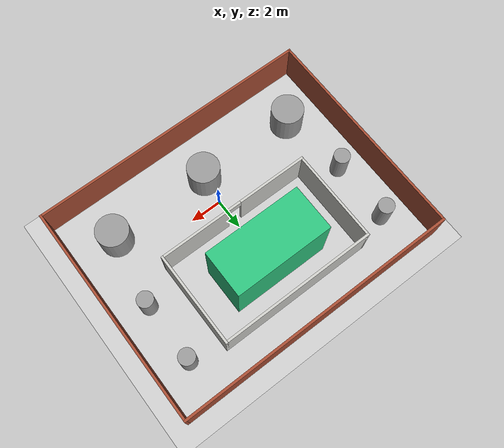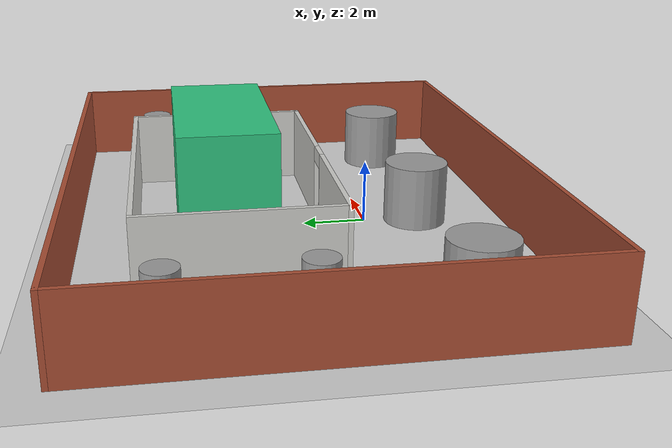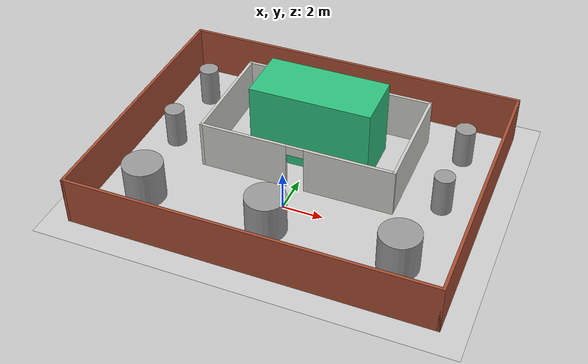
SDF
<sdf version="1.7">
 <world name="default">
  <light name="sun" type="directional">
   <pose>0 0 10 0 -0 0</pose>
   <diffuse>0.8 0.8 0.8 1</diffuse>
   <specular>0.2 0.2 0.2 1</specular>
   <attenuation>
    <range>1000</range>
    <constant>0.9</constant>
    <linear>0.01</linear>
    <quadratic>0.001</quadratic>
   </attenuation>
   <direction>-0.5 0.1 -0.9</direction>
   <spot><inner_angle>0</inner_angle><outer_angle>0</outer_angle><falloff>0</falloff></spot>
  </light>
  <model name="ground_plane">
   <static>1</static>
   <link name="link">
    <collision name="collision">
     <geometry><plane><normal>0 0 1</normal><size>100 100</size></plane></geometry>
     <surface>
      <contact><collide_bitmask>65535</collide_bitmask></contact>
      <friction><ode><mu>100</mu><mu2>50</mu2></ode></friction>
     </surface>
    </collision>
    <visual name="visual">
     <cast_shadows>0</cast_shadows>
     <geometry><plane><normal>0 0 1</normal><size>100 100</size></plane></geometry>
     <material>
      <script><uri>file://media/materials/scripts/gazebo.material</uri><name>Gazebo/Grey</name></script>
     </material>
    </visual>
   </link>
  </model>
  <gravity>0 0 -9.8</gravity>
  <magnetic_field>6e-06 2.3e-05 -4.2e-05</magnetic_field>
  <atmosphere type="adiabatic"/>
  <physics type="ode">
   <max_step_size>0.001</max_step_size>
   <real_time_factor>1</real_time_factor>
   <real_time_update_rate>1000</real_time_update_rate>
  </physics>
  <scene><ambient>0.4 0.4 0.4 1</ambient><background>0.7 0.7 0.7 1</background><shadows>1</shadows></scene>
  <audio><device>default</device></audio>
  <spherical_coordinates>
   <surface_model>EARTH_WGS84</surface_model>
   <latitude_deg>0</latitude_deg>
   <longitude_deg>0</longitude_deg>
   <elevation>0</elevation>
   <heading_deg>0</heading_deg>
  </spherical_coordinates>
  <model name="building">
   <link name="link_0">
    <inertial>
     <mass>119.736</mass>
     <inertia><ixx>518.581</ixx><ixy>0</ixy><ixz>0</ixz><iyy>817.421</iyy><iyz>0</iyz><izz>469.951</izz></inertia>
    </inertial>
    <pose>0 0 2 0 -0 0</pose>
    <visual name="visual">
     <geometry><box><size>6.20681 2.92821 4</size></box></geometry>
     <material>
      <lighting>1</lighting>
      <script><uri>file://media/materials/scripts/gazebo.material</uri><name>Gazebo/Grey</name></script>
      <shader type="pixel"><normal_map>__default__</normal_map></shader>
      <ambient>0.18 0.761 0.494 1</ambient>
      <diffuse>0.7 0.7 0.7 1</diffuse>
      <specular>0.01 0.01 0.01 1</specular>
      <emissive>0 0 0 1</emissive>
     </material>
    </visual>
    <collision name="collision">
     <geometry><box><size>6.20681 2.92821 4</size></box></geometry>
     <surface>
      <friction>
       <ode><mu>1</mu><mu2>1</mu2><fdir1>0 0 0</fdir1><slip1>0</slip1><slip2>0</slip2></ode>
       <torsional>
        <coefficient>1</coefficient>
        <patch_radius>0</patch_radius>
        <surface_radius>0</surface_radius>
        <use_patch_radius>1</use_patch_radius>
        <ode><slip>0</slip></ode>
       </torsional>
      </friction>
      <bounce><restitution_coefficient>0</restitution_coefficient><threshold>1e+06</threshold></bounce>
      <contact>
       <collide_without_contact>0</collide_without_contact>
       <collide_without_contact_bitmask>1</collide_without_contact_bitmask>
       <collide_bitmask>1</collide_bitmask>
       <ode>
        <soft_cfm>0</soft_cfm>
        <soft_erp>0.2</soft_erp>
        <kp>1e+13</kp>
        <kd>1</kd>
        <max_vel>0.01</max_vel>
        <min_depth>0</min_depth>
       </ode>
       <bullet>
        <split_impulse>1</split_impulse>
        <split_impulse_penetration_threshold>-0.01</split_impulse_penetration_threshold>
        <soft_cfm>0</soft_cfm>
        <soft_erp>0.2</soft_erp>
        <kp>1e+13</kp>
        <kd>1</kd>
       </bullet>
      </contact>
     </surface>
    </collision>
   </link>
   <static>0</static>
   <pose>0.019029 4.61016 -0 0 -0 0</pose>
  </model>
  <model name="pole2">
   <link name="link_3_clone">
    <inertial>
     <mass>3141.59</mass>
     <inertia><ixx>1243.55</ixx><ixy>0</ixy><ixz>0</ixz><iyy>1243.55</iyy><iyz>0</iyz><izz>392.699</izz></inertia>
    </inertial>
    <pose>-6.4412 -0.077375 1 0 -0 0</pose>
    <visual name="visual">
     <geometry><cylinder><radius>1</radius><length>2</length></cylinder></geometry>
     <material>
      <lighting>1</lighting>
      <script><uri>file://media/materials/scripts/gazebo.material</uri><name>Gazebo/Grey</name></script>
      <shader type="pixel"><normal_map>__default__</normal_map></shader>
      <ambient>0.604 0.6 0.588 1</ambient>
      <diffuse>0.7 0.7 0.7 1</diffuse>
      <specular>0.01 0.01 0.01 1</specular>
      <emissive>0 0 0 1</emissive>
     </material>
    </visual>
    <collision name="collision">
     <geometry><cylinder><radius>1</radius><length>2</length></cylinder></geometry>
     <surface>
      <friction>
       <ode><mu>1</mu><mu2>1</mu2><fdir1>0 0 0</fdir1><slip1>0</slip1><slip2>0</slip2></ode>
       <torsional>
        <coefficient>1</coefficient>
        <patch_radius>0</patch_radius>
        <surface_radius>0</surface_radius>
        <use_patch_radius>1</use_patch_radius>
        <ode><slip>0</slip></ode>
       </torsional>
      </friction>
      <bounce><restitution_coefficient>0</restitution_coefficient><threshold>1e+06</threshold></bounce>
      <contact>
       <collide_without_contact>0</collide_without_contact>
       <collide_without_contact_bitmask>1</collide_without_contact_bitmask>
       <collide_bitmask>1</collide_bitmask>
       <ode>
        <soft_cfm>0</soft_cfm>
        <soft_erp>0.2</soft_erp>
        <kp>1e+13</kp>
        <kd>1</kd>
        <max_vel>0.01</max_vel>
        <min_depth>0</min_depth>
       </ode>
       <bullet>
        <split_impulse>1</split_impulse>
        <split_impulse_penetration_threshold>-0.01</split_impulse_penetration_threshold>
        <soft_cfm>0</soft_cfm>
        <soft_erp>0.2</soft_erp>
        <kp>1e+13</kp>
        <kd>1</kd>
       </bullet>
      </contact>
     </surface>
    </collision>
   </link>
   <link name="link_3_clone_clone">
    <inertial>
     <mass>3141.59</mass>
     <inertia><ixx>1243.55</ixx><ixy>0</ixy><ixz>0</ixz><iyy>1243.55</iyy><iyz>0</iyz><izz>392.699</izz></inertia>
    </inertial>
    <pose>6.27808 -0.077375 1 0 -0 0</pose>
    <visual name="visual">
     <geometry><cylinder><radius>1</radius><length>2</length></cylinder></geometry>
     <material>
      <lighting>1</lighting>
      <script><uri>file://media/materials/scripts/gazebo.material</uri><name>Gazebo/Grey</name></script>
      <shader type="pixel"><normal_map>__default__</normal_map></shader>
      <ambient>0.604 0.6 0.588 1</ambient>
      <diffuse>0.7 0.7 0.7 1</diffuse>
      <specular>0.01 0.01 0.01 1</specular>
      <emissive>0 0 0 1</emissive>
     </material>
    </visual>
    <collision name="collision">
     <geometry><cylinder><radius>1</radius><length>2</length></cylinder></geometry>
     <surface>
      <friction>
       <ode><mu>1</mu><mu2>1</mu2><fdir1>0 0 0</fdir1><slip1>0</slip1><slip2>0</slip2></ode>
       <torsional>
        <coefficient>1</coefficient>
        <patch_radius>0</patch_radius>
        <surface_radius>0</surface_radius>
        <use_patch_radius>1</use_patch_radius>
        <ode><slip>0</slip></ode>
       </torsional>
      </friction>
      <bounce><restitution_coefficient>0</restitution_coefficient><threshold>1e+06</threshold></bounce>
      <contact>
       <collide_without_contact>0</collide_without_contact>
       <collide_without_contact_bitmask>1</collide_without_contact_bitmask>
       <collide_bitmask>1</collide_bitmask>
       <ode>
        <soft_cfm>0</soft_cfm>
        <soft_erp>0.2</soft_erp>
        <kp>1e+13</kp>
        <kd>1</kd>
        <max_vel>0.01</max_vel>
        <min_depth>0</min_depth>
       </ode>
       <bullet>
        <split_impulse>1</split_impulse>
        <split_impulse_penetration_threshold>-0.01</split_impulse_penetration_threshold>
        <soft_cfm>0</soft_cfm>
        <soft_erp>0.2</soft_erp>
        <kp>1e+13</kp>
        <kd>1</kd>
       </bullet>
      </contact>
     </surface>
    </collision>
   </link>
   <link name="link_3_clone_clone_0">
    <inertial>
     <mass>3141.59</mass>
     <inertia><ixx>1243.55</ixx><ixy>0</ixy><ixz>0</ixz><iyy>1243.55</iyy><iyz>0</iyz><izz>392.699</izz></inertia>
    </inertial>
    <pose>-0.117986 -0.077375 1 0 -0 0</pose>
    <visual name="visual">
     <geometry><cylinder><radius>1</radius><length>2</length></cylinder></geometry>
     <material>
      <lighting>1</lighting>
      <script><uri>file://media/materials/scripts/gazebo.material</uri><name>Gazebo/Grey</name></script>
      <shader type="pixel"><normal_map>__default__</normal_map></shader>
      <ambient>0.604 0.6 0.588 1</ambient>
      <diffuse>0.7 0.7 0.7 1</diffuse>
      <specular>0.01 0.01 0.01 1</specular>
      <emissive>0 0 0 1</emissive>
     </material>
    </visual>
    <collision name="collision">
     <geometry><cylinder><radius>1</radius><length>2</length></cylinder></geometry>
     <surface>
      <friction>
       <ode><mu>1</mu><mu2>1</mu2><fdir1>0 0 0</fdir1><slip1>0</slip1><slip2>0</slip2></ode>
       <torsional>
        <coefficient>1</coefficient>
        <patch_radius>0</patch_radius>
        <surface_radius>0</surface_radius>
        <use_patch_radius>1</use_patch_radius>
        <ode><slip>0</slip></ode>
       </torsional>
      </friction>
      <bounce><restitution_coefficient>0</restitution_coefficient><threshold>1e+06</threshold></bounce>
      <contact>
       <collide_without_contact>0</collide_without_contact>
       <collide_without_contact_bitmask>1</collide_without_contact_bitmask>
       <collide_bitmask>1</collide_bitmask>
       <ode>
        <soft_cfm>0</soft_cfm>
        <soft_erp>0.2</soft_erp>
        <kp>1e+13</kp>
        <kd>1</kd>
        <max_vel>0.01</max_vel>
        <min_depth>0</min_depth>
       </ode>
       <bullet>
        <split_impulse>1</split_impulse>
        <split_impulse_penetration_threshold>-0.01</split_impulse_penetration_threshold>
        <soft_cfm>0</soft_cfm>
        <soft_erp>0.2</soft_erp>
        <kp>1e+13</kp>
        <kd>1</kd>
       </bullet>
      </contact>
     </surface>
    </collision>
   </link>
   <link name="link_3_clone_clone_clone">
    <inertial>
     <mass>3141.59</mass>
     <inertia><ixx>1243.55</ixx><ixy>0</ixy><ixz>0</ixz><iyy>1243.55</iyy><iyz>0</iyz><izz>392.699</izz></inertia>
    </inertial>
    <pose>7.03983 8.21235 1 0 -0 0</pose>
    <visual name="visual">
     <geometry><cylinder><radius>0.5</radius><length>2</length></cylinder></geometry>
     <material>
      <lighting>1</lighting>
      <script><uri>file://media/materials/scripts/gazebo.material</uri><name>Gazebo/Grey</name></script>
      <shader type="pixel"><normal_map>__default__</normal_map></shader>
      <ambient>0.604 0.6 0.588 1</ambient>
      <diffuse>0.7 0.7 0.7 1</diffuse>
      <specular>0.01 0.01 0.01 1</specular>
      <emissive>0 0 0 1</emissive>
     </material>
    </visual>
    <collision name="collision">
     <geometry><cylinder><radius>0.5</radius><length>2</length></cylinder></geometry>
     <surface>
      <friction>
       <ode><mu>1</mu><mu2>1</mu2><fdir1>0 0 0</fdir1><slip1>0</slip1><slip2>0</slip2></ode>
       <torsional>
        <coefficient>1</coefficient>
        <patch_radius>0</patch_radius>
        <surface_radius>0</surface_radius>
        <use_patch_radius>1</use_patch_radius>
        <ode><slip>0</slip></ode>
       </torsional>
      </friction>
      <bounce><restitution_coefficient>0</restitution_coefficient><threshold>1e+06</threshold></bounce>
      <contact>
       <collide_without_contact>0</collide_without_contact>
       <collide_without_contact_bitmask>1</collide_without_contact_bitmask>
       <collide_bitmask>1</collide_bitmask>
       <ode>
        <soft_cfm>0</soft_cfm>
        <soft_erp>0.2</soft_erp>
        <kp>1e+13</kp>
        <kd>1</kd>
        <max_vel>0.01</max_vel>
        <min_depth>0</min_depth>
       </ode>
       <bullet>
        <split_impulse>1</split_impulse>
        <split_impulse_penetration_threshold>-0.01</split_impulse_penetration_threshold>
        <soft_cfm>0</soft_cfm>
        <soft_erp>0.2</soft_erp>
        <kp>1e+13</kp>
        <kd>1</kd>
       </bullet>
      </contact>
     </surface>
    </collision>
   </link>
   <link name="link_3_clone_clone_clone_clone">
    <inertial>
     <mass>3141.59</mass>
     <inertia><ixx>1243.55</ixx><ixy>0</ixy><ixz>0</ixz><iyy>1243.55</iyy><iyz>0</iyz><izz>392.699</izz></inertia>
    </inertial>
    <pose>-7.0558 8.21235 1 0 -0 0</pose>
    <visual name="visual">
     <geometry><cylinder><radius>0.5</radius><length>2</length></cylinder></geometry>
     <material>
      <lighting>1</lighting>
      <script><uri>file://media/materials/scripts/gazebo.material</uri><name>Gazebo/Grey</name></script>
      <shader type="pixel"><normal_map>__default__</normal_map></shader>
      <ambient>0.604 0.6 0.588 1</ambient>
      <diffuse>0.7 0.7 0.7 1</diffuse>
      <specular>0.01 0.01 0.01 1</specular>
      <emissive>0 0 0 1</emissive>
     </material>
    </visual>
    <collision name="collision">
     <geometry><cylinder><radius>0.5</radius><length>2</length></cylinder></geometry>
     <surface>
      <friction>
       <ode><mu>1</mu><mu2>1</mu2><fdir1>0 0 0</fdir1><slip1>0</slip1><slip2>0</slip2></ode>
       <torsional>
        <coefficient>1</coefficient>
        <patch_radius>0</patch_radius>
        <surface_radius>0</surface_radius>
        <use_patch_radius>1</use_patch_radius>
        <ode><slip>0</slip></ode>
       </torsional>
      </friction>
      <bounce><restitution_coefficient>0</restitution_coefficient><threshold>1e+06</threshold></bounce>
      <contact>
       <collide_without_contact>0</collide_without_contact>
       <collide_without_contact_bitmask>1</collide_without_contact_bitmask>
       <collide_bitmask>1</collide_bitmask>
       <ode>
        <soft_cfm>0</soft_cfm>
        <soft_erp>0.2</soft_erp>
        <kp>1e+13</kp>
        <kd>1</kd>
        <max_vel>0.01</max_vel>
        <min_depth>0</min_depth>
       </ode>
       <bullet>
        <split_impulse>1</split_impulse>
        <split_impulse_penetration_threshold>-0.01</split_impulse_penetration_threshold>
        <soft_cfm>0</soft_cfm>
        <soft_erp>0.2</soft_erp>
        <kp>1e+13</kp>
        <kd>1</kd>
       </bullet>
      </contact>
     </surface>
    </collision>
   </link>
   <link name="link_3_clone_clone_clone_clone_0">
    <inertial>
     <mass>3141.59</mass>
     <inertia><ixx>1243.55</ixx><ixy>0</ixy><ixz>0</ixz><iyy>1243.55</iyy><iyz>0</iyz><izz>392.699</izz></inertia>
    </inertial>
    <pose>-7.0558 4.27801 1 0 -0 0</pose>
    <visual name="visual">
     <geometry><cylinder><radius>0.5</radius><length>2</length></cylinder></geometry>
     <material>
      <lighting>1</lighting>
      <script><uri>file://media/materials/scripts/gazebo.material</uri><name>Gazebo/Grey</name></script>
      <shader type="pixel"><normal_map>__default__</normal_map></shader>
      <ambient>0.604 0.6 0.588 1</ambient>
      <diffuse>0.7 0.7 0.7 1</diffuse>
      <specular>0.01 0.01 0.01 1</specular>
      <emissive>0 0 0 1</emissive>
     </material>
    </visual>
    <collision name="collision">
     <geometry><cylinder><radius>0.5</radius><length>2</length></cylinder></geometry>
     <surface>
      <friction>
       <ode><mu>1</mu><mu2>1</mu2><fdir1>0 0 0</fdir1><slip1>0</slip1><slip2>0</slip2></ode>
       <torsional>
        <coefficient>1</coefficient>
        <patch_radius>0</patch_radius>
        <surface_radius>0</surface_radius>
        <use_patch_radius>1</use_patch_radius>
        <ode><slip>0</slip></ode>
       </torsional>
      </friction>
      <bounce><restitution_coefficient>0</restitution_coefficient><threshold>1e+06</threshold></bounce>
      <contact>
       <collide_without_contact>0</collide_without_contact>
       <collide_without_contact_bitmask>1</collide_without_contact_bitmask>
       <collide_bitmask>1</collide_bitmask>
       <ode>
        <soft_cfm>0</soft_cfm>
        <soft_erp>0.2</soft_erp>
        <kp>1e+13</kp>
        <kd>1</kd>
        <max_vel>0.01</max_vel>
        <min_depth>0</min_depth>
       </ode>
       <bullet>
        <split_impulse>1</split_impulse>
        <split_impulse_penetration_threshold>-0.01</split_impulse_penetration_threshold>
        <soft_cfm>0</soft_cfm>
        <soft_erp>0.2</soft_erp>
        <kp>1e+13</kp>
        <kd>1</kd>
       </bullet>
      </contact>
     </surface>
    </collision>
   </link>
   <link name="link_3_clone_clone_clone_clone_0_clone">
    <inertial>
     <mass>3141.59</mass>
     <inertia><ixx>1243.55</ixx><ixy>0</ixy><ixz>0</ixz><iyy>1243.55</iyy><iyz>0</iyz><izz>392.699</izz></inertia>
    </inertial>
    <pose>7.03983 4.32667 1 0 -0 0</pose>
    <visual name="visual">
     <geometry><cylinder><radius>0.5</radius><length>2</length></cylinder></geometry>
     <material>
      <lighting>1</lighting>
      <script><uri>file://media/materials/scripts/gazebo.material</uri><name>Gazebo/Grey</name></script>
      <shader type="pixel"><normal_map>__default__</normal_map></shader>
      <ambient>0.604 0.6 0.588 1</ambient>
      <diffuse>0.7 0.7 0.7 1</diffuse>
      <specular>0.01 0.01 0.01 1</specular>
      <emissive>0 0 0 1</emissive>
     </material>
    </visual>
    <collision name="collision">
     <geometry><cylinder><radius>0.5</radius><length>2</length></cylinder></geometry>
     <surface>
      <friction>
       <ode><mu>1</mu><mu2>1</mu2><fdir1>0 0 0</fdir1><slip1>0</slip1><slip2>0</slip2></ode>
       <torsional>
        <coefficient>1</coefficient>
        <patch_radius>0</patch_radius>
        <surface_radius>0</surface_radius>
        <use_patch_radius>1</use_patch_radius>
        <ode><slip>0</slip></ode>
       </torsional>
      </friction>
      <bounce><restitution_coefficient>0</restitution_coefficient><threshold>1e+06</threshold></bounce>
      <contact>
       <collide_without_contact>0</collide_without_contact>
       <collide_without_contact_bitmask>1</collide_without_contact_bitmask>
       <collide_bitmask>1</collide_bitmask>
       <ode>
        <soft_cfm>0</soft_cfm>
        <soft_erp>0.2</soft_erp>
        <kp>1e+13</kp>
        <kd>1</kd>
        <max_vel>0.01</max_vel>
        <min_depth>0</min_depth>
       </ode>
       <bullet>
        <split_impulse>1</split_impulse>
        <split_impulse_penetration_threshold>-0.01</split_impulse_penetration_threshold>
        <soft_cfm>0</soft_cfm>
        <soft_erp>0.2</soft_erp>
        <kp>1e+13</kp>
        <kd>1</kd>
       </bullet>
      </contact>
     </surface>
    </collision>
   </link>
   <static>0</static>
   <pose>-0.031832 -1.58928 -1.4e-05 -2e-06 -2e-06 0</pose>
  </model>
  <model name="testworld2">
   <link name="Wall_16">
    <pose>0 -6.925 0 0 -0 0</pose>
    <inertial>
     <mass>13500</mass>
     <inertia><ixx>7056.56</ixx><ixy>0</ixy><ixz>0</ixz><iyy>371531</iyy><iyz>0</iyz><izz>364525</izz></inertia>
    </inertial>
    <visual name="Wall_16_Visual">
     <pose>0 0 1.25 0 -0 0</pose>
     <geometry><box><size>18 0.15 2.5</size></box></geometry>
     <material>
      <script><uri>file://media/materials/scripts/gazebo.material</uri><name>Gazebo/Bricks</name></script>
      <ambient>1 1 1 1</ambient>
      <shader type="pixel"><normal_map>__default__</normal_map></shader>
     </material>
     <meta><layer>0</layer></meta>
    </visual>
    <collision name="Wall_16_Collision">
     <pose>0 0 1.25 0 -0 0</pose>
     <geometry><box><size>18 0.15 2.5</size></box></geometry>
     <surface>
      <friction>
       <ode><mu>1</mu><mu2>1</mu2><fdir1>0 0 0</fdir1><slip1>0</slip1><slip2>0</slip2></ode>
       <torsional>
        <coefficient>1</coefficient>
        <patch_radius>0</patch_radius>
        <surface_radius>0</surface_radius>
        <use_patch_radius>1</use_patch_radius>
        <ode><slip>0</slip></ode>
       </torsional>
      </friction>
      <bounce><restitution_coefficient>0</restitution_coefficient><threshold>1e+06</threshold></bounce>
      <contact>
       <collide_without_contact>0</collide_without_contact>
       <collide_without_contact_bitmask>1</collide_without_contact_bitmask>
       <collide_bitmask>1</collide_bitmask>
       <ode>
        <soft_cfm>0</soft_cfm>
        <soft_erp>0.2</soft_erp>
        <kp>1e+13</kp>
        <kd>1</kd>
        <max_vel>0.01</max_vel>
        <min_depth>0</min_depth>
       </ode>
       <bullet>
        <split_impulse>1</split_impulse>
        <split_impulse_penetration_threshold>-0.01</split_impulse_penetration_threshold>
        <soft_cfm>0</soft_cfm>
        <soft_erp>0.2</soft_erp>
        <kp>1e+13</kp>
        <kd>1</kd>
       </bullet>
      </contact>
     </surface>
    </collision>
   </link>
   <link name="Wall_17">
    <pose>8.925 0 0 0 -0 1.5708</pose>
    <inertial>
     <mass>10500</mass>
     <inertia><ixx>5488.44</ixx><ixy>0</ixy><ixz>0</ixz><iyy>176969</iyy><iyz>0</iyz><izz>171520</izz></inertia>
    </inertial>
    <visual name="Wall_17_Visual">
     <pose>0 0 1.25 0 -0 0</pose>
     <geometry><box><size>14 0.15 2.5</size></box></geometry>
     <material>
      <script><uri>file://media/materials/scripts/gazebo.material</uri><name>Gazebo/Bricks</name></script>
      <ambient>1 1 1 1</ambient>
      <shader type="pixel"><normal_map>__default__</normal_map></shader>
     </material>
     <meta><layer>0</layer></meta>
    </visual>
    <collision name="Wall_17_Collision">
     <pose>0 0 1.25 0 -0 0</pose>
     <geometry><box><size>14 0.15 2.5</size></box></geometry>
     <surface>
      <friction>
       <ode><mu>1</mu><mu2>1</mu2><fdir1>0 0 0</fdir1><slip1>0</slip1><slip2>0</slip2></ode>
       <torsional>
        <coefficient>1</coefficient>
        <patch_radius>0</patch_radius>
        <surface_radius>0</surface_radius>
        <use_patch_radius>1</use_patch_radius>
        <ode><slip>0</slip></ode>
       </torsional>
      </friction>
      <bounce><restitution_coefficient>0</restitution_coefficient><threshold>1e+06</threshold></bounce>
      <contact>
       <collide_without_contact>0</collide_without_contact>
       <collide_without_contact_bitmask>1</collide_without_contact_bitmask>
       <collide_bitmask>1</collide_bitmask>
       <ode>
        <soft_cfm>0</soft_cfm>
        <soft_erp>0.2</soft_erp>
        <kp>1e+13</kp>
        <kd>1</kd>
        <max_vel>0.01</max_vel>
        <min_depth>0</min_depth>
       </ode>
       <bullet>
        <split_impulse>1</split_impulse>
        <split_impulse_penetration_threshold>-0.01</split_impulse_penetration_threshold>
        <soft_cfm>0</soft_cfm>
        <soft_erp>0.2</soft_erp>
        <kp>1e+13</kp>
        <kd>1</kd>
       </bullet>
      </contact>
     </surface>
    </collision>
   </link>
   <link name="Wall_18">
    <pose>0 6.925 0 0 -0 3.14159</pose>
    <inertial>
     <mass>13500</mass>
     <inertia><ixx>7056.56</ixx><ixy>0</ixy><ixz>0</ixz><iyy>371531</iyy><iyz>0</iyz><izz>364525</izz></inertia>
    </inertial>
    <visual name="Wall_18_Visual">
     <pose>0 0 1.25 0 -0 0</pose>
     <geometry><box><size>18 0.15 2.5</size></box></geometry>
     <material>
      <script><uri>file://media/materials/scripts/gazebo.material</uri><name>Gazebo/Bricks</name></script>
      <ambient>1 1 1 1</ambient>
      <shader type="pixel"><normal_map>__default__</normal_map></shader>
     </material>
     <meta><layer>0</layer></meta>
    </visual>
    <collision name="Wall_18_Collision">
     <pose>0 0 1.25 0 -0 0</pose>
     <geometry><box><size>18 0.15 2.5</size></box></geometry>
     <surface>
      <friction>
       <ode><mu>1</mu><mu2>1</mu2><fdir1>0 0 0</fdir1><slip1>0</slip1><slip2>0</slip2></ode>
       <torsional>
        <coefficient>1</coefficient>
        <patch_radius>0</patch_radius>
        <surface_radius>0</surface_radius>
        <use_patch_radius>1</use_patch_radius>
        <ode><slip>0</slip></ode>
       </torsional>
      </friction>
      <bounce><restitution_coefficient>0</restitution_coefficient><threshold>1e+06</threshold></bounce>
      <contact>
       <collide_without_contact>0</collide_without_contact>
       <collide_without_contact_bitmask>1</collide_without_contact_bitmask>
       <collide_bitmask>1</collide_bitmask>
       <ode>
        <soft_cfm>0</soft_cfm>
        <soft_erp>0.2</soft_erp>
        <kp>1e+13</kp>
        <kd>1</kd>
        <max_vel>0.01</max_vel>
        <min_depth>0</min_depth>
       </ode>
       <bullet>
        <split_impulse>1</split_impulse>
        <split_impulse_penetration_threshold>-0.01</split_impulse_penetration_threshold>
        <soft_cfm>0</soft_cfm>
        <soft_erp>0.2</soft_erp>
        <kp>1e+13</kp>
        <kd>1</kd>
       </bullet>
      </contact>
     </surface>
    </collision>
   </link>
   <link name="Wall_19">
    <pose>-8.925 0 0 0 0 -1.5708</pose>
    <inertial>
     <mass>10500</mass>
     <inertia><ixx>5488.44</ixx><ixy>0</ixy><ixz>0</ixz><iyy>176969</iyy><iyz>0</iyz><izz>171520</izz></inertia>
    </inertial>
    <visual name="Wall_19_Visual">
     <pose>0 0 1.25 0 -0 0</pose>
     <geometry><box><size>14 0.15 2.5</size></box></geometry>
     <material>
      <script><uri>file://media/materials/scripts/gazebo.material</uri><name>Gazebo/Bricks</name></script>
      <ambient>1 1 1 1</ambient>
      <shader type="pixel"><normal_map>__default__</normal_map></shader>
     </material>
     <meta><layer>0</layer></meta>
    </visual>
    <collision name="Wall_19_Collision">
     <pose>0 0 1.25 0 -0 0</pose>
     <geometry><box><size>14 0.15 2.5</size></box></geometry>
     <surface>
      <friction>
       <ode><mu>1</mu><mu2>1</mu2><fdir1>0 0 0</fdir1><slip1>0</slip1><slip2>0</slip2></ode>
       <torsional>
        <coefficient>1</coefficient>
        <patch_radius>0</patch_radius>
        <surface_radius>0</surface_radius>
        <use_patch_radius>1</use_patch_radius>
        <ode><slip>0</slip></ode>
       </torsional>
      </friction>
      <bounce><restitution_coefficient>0</restitution_coefficient><threshold>1e+06</threshold></bounce>
      <contact>
       <collide_without_contact>0</collide_without_contact>
       <collide_without_contact_bitmask>1</collide_without_contact_bitmask>
       <collide_bitmask>1</collide_bitmask>
       <ode>
        <soft_cfm>0</soft_cfm>
        <soft_erp>0.2</soft_erp>
        <kp>1e+13</kp>
        <kd>1</kd>
        <max_vel>0.01</max_vel>
        <min_depth>0</min_depth>
       </ode>
       <bullet>
        <split_impulse>1</split_impulse>
        <split_impulse_penetration_threshold>-0.01</split_impulse_penetration_threshold>
        <soft_cfm>0</soft_cfm>
        <soft_erp>0.2</soft_erp>
        <kp>1e+13</kp>
        <kd>1</kd>
       </bullet>
      </contact>
     </surface>
    </collision>
   </link>
   <link name="Wall_26">
    <pose>-0.040552 5.03123 0 0 -0 0</pose>
    <inertial>
     <mass>7500</mass>
     <inertia><ixx>3920.31</ixx><ixy>0</ixy><ixz>0</ixz><iyy>66406.2</iyy><iyz>0</iyz><izz>62514.1</izz></inertia>
    </inertial>
    <visual name="Wall_26_Visual">
     <pose>0 0 1.25 0 -0 0</pose>
     <geometry><box><size>10 0.15 2.5</size></box></geometry>
     <material>
      <script><uri>file://media/materials/scripts/gazebo.material</uri><name>Gazebo/CeilingTiled</name></script>
      <ambient>1 1 1 1</ambient>
      <shader type="pixel"><normal_map>__default__</normal_map></shader>
     </material>
     <meta><layer>0</layer></meta>
    </visual>
    <collision name="Wall_26_Collision">
     <pose>0 0 1.25 0 -0 0</pose>
     <geometry><box><size>10 0.15 2.5</size></box></geometry>
     <surface>
      <friction>
       <ode><mu>1</mu><mu2>1</mu2><fdir1>0 0 0</fdir1><slip1>0</slip1><slip2>0</slip2></ode>
       <torsional>
        <coefficient>1</coefficient>
        <patch_radius>0</patch_radius>
        <surface_radius>0</surface_radius>
        <use_patch_radius>1</use_patch_radius>
        <ode><slip>0</slip></ode>
       </torsional>
      </friction>
      <bounce><restitution_coefficient>0</restitution_coefficient><threshold>1e+06</threshold></bounce>
      <contact>
       <collide_without_contact>0</collide_without_contact>
       <collide_without_contact_bitmask>1</collide_without_contact_bitmask>
       <collide_bitmask>1</collide_bitmask>
       <ode>
        <soft_cfm>0</soft_cfm>
        <soft_erp>0.2</soft_erp>
        <kp>1e+13</kp>
        <kd>1</kd>
        <max_vel>0.01</max_vel>
        <min_depth>0</min_depth>
       </ode>
       <bullet>
        <split_impulse>1</split_impulse>
        <split_impulse_penetration_threshold>-0.01</split_impulse_penetration_threshold>
        <soft_cfm>0</soft_cfm>
        <soft_erp>0.2</soft_erp>
        <kp>1e+13</kp>
        <kd>1</kd>
       </bullet>
      </contact>
     </surface>
    </collision>
   </link>
   <link name="Wall_27">
    <pose>4.88445 2.10623 0 0 0 -1.5708</pose>
    <inertial>
     <mass>4500</mass>
     <inertia><ixx>2352.19</ixx><ixy>0</ixy><ixz>0</ixz><iyy>15843.8</iyy><iyz>0</iyz><izz>13508.4</izz></inertia>
    </inertial>
    <visual name="Wall_27_Visual">
     <pose>0 0 1.25 0 -0 0</pose>
     <geometry><box><size>6 0.15 2.5</size></box></geometry>
     <material>
      <script><uri>file://media/materials/scripts/gazebo.material</uri><name>Gazebo/CeilingTiled</name></script>
      <ambient>1 1 1 1</ambient>
      <shader type="pixel"><normal_map>__default__</normal_map></shader>
     </material>
     <meta><layer>0</layer></meta>
    </visual>
    <collision name="Wall_27_Collision">
     <pose>0 0 1.25 0 -0 0</pose>
     <geometry><box><size>6 0.15 2.5</size></box></geometry>
     <surface>
      <friction>
       <ode><mu>1</mu><mu2>1</mu2><fdir1>0 0 0</fdir1><slip1>0</slip1><slip2>0</slip2></ode>
       <torsional>
        <coefficient>1</coefficient>
        <patch_radius>0</patch_radius>
        <surface_radius>0</surface_radius>
        <use_patch_radius>1</use_patch_radius>
        <ode><slip>0</slip></ode>
       </torsional>
      </friction>
      <bounce><restitution_coefficient>0</restitution_coefficient><threshold>1e+06</threshold></bounce>
      <contact>
       <collide_without_contact>0</collide_without_contact>
       <collide_without_contact_bitmask>1</collide_without_contact_bitmask>
       <collide_bitmask>1</collide_bitmask>
       <ode>
        <soft_cfm>0</soft_cfm>
        <soft_erp>0.2</soft_erp>
        <kp>1e+13</kp>
        <kd>1</kd>
        <max_vel>0.01</max_vel>
        <min_depth>0</min_depth>
       </ode>
       <bullet>
        <split_impulse>1</split_impulse>
        <split_impulse_penetration_threshold>-0.01</split_impulse_penetration_threshold>
        <soft_cfm>0</soft_cfm>
        <soft_erp>0.2</soft_erp>
        <kp>1e+13</kp>
        <kd>1</kd>
       </bullet>
      </contact>
     </surface>
    </collision>
   </link>
   <link name="Wall_28">
    <pose>-0.040552 -0.818773 0 0 -0 3.14159</pose>
    <inertial>
     <mass>6960</mass>
     <inertia><ixx>3638.05</ixx><ixy>0</ixy><ixz>0</ixz><iyy>15653.4</iyy><iyz>0</iyz><izz>12041.4</izz></inertia>
    </inertial>
    <visual name="Wall_28_Visual_0">
     <pose>-2.72302 0 1.25 0 -0 0</pose>
     <geometry><box><size>4.55396 0.15 2.5</size></box></geometry>
     <material>
      <script><uri>file://media/materials/scripts/gazebo.material</uri><name>Gazebo/CeilingTiled</name></script>
      <ambient>1 1 1 1</ambient>
      <shader type="pixel"><normal_map>__default__</normal_map></shader>
     </material>
     <meta><layer>0</layer></meta>
    </visual>
    <visual name="Wall_28_Visual_1">
     <pose>2.72698 0 1.25 0 -0 0</pose>
     <geometry><box><size>4.54604 0.15 2.5</size></box></geometry>
     <material>
      <script><uri>file://media/materials/scripts/gazebo.material</uri><name>Gazebo/CeilingTiled</name></script>
      <ambient>1 1 1 1</ambient>
      <shader type="pixel"><normal_map>__default__</normal_map></shader>
     </material>
     <meta><layer>0</layer></meta>
    </visual>
    <visual name="Wall_28_Visual_2">
     <pose>0.003963 0 2.25 0 -0 0</pose>
     <geometry><box><size>0.9 0.15 0.5</size></box></geometry>
     <material>
      <script><uri>file://media/materials/scripts/gazebo.material</uri><name>Gazebo/CeilingTiled</name></script>
      <ambient>1 1 1 1</ambient>
      <shader type="pixel"><normal_map>__default__</normal_map></shader>
     </material>
     <meta><layer>0</layer></meta>
    </visual>
    <collision name="Wall_28_Collision_0">
     <pose>-2.72302 0 1.25 0 -0 0</pose>
     <geometry><box><size>4.55396 0.15 2.5</size></box></geometry>
     <surface>
      <friction>
       <ode><mu>1</mu><mu2>1</mu2><fdir1>0 0 0</fdir1><slip1>0</slip1><slip2>0</slip2></ode>
       <torsional>
        <coefficient>1</coefficient>
        <patch_radius>0</patch_radius>
        <surface_radius>0</surface_radius>
        <use_patch_radius>1</use_patch_radius>
        <ode><slip>0</slip></ode>
       </torsional>
      </friction>
      <bounce><restitution_coefficient>0</restitution_coefficient><threshold>1e+06</threshold></bounce>
      <contact>
       <collide_without_contact>0</collide_without_contact>
       <collide_without_contact_bitmask>1</collide_without_contact_bitmask>
       <collide_bitmask>1</collide_bitmask>
       <ode>
        <soft_cfm>0</soft_cfm>
        <soft_erp>0.2</soft_erp>
        <kp>1e+13</kp>
        <kd>1</kd>
        <max_vel>0.01</max_vel>
        <min_depth>0</min_depth>
       </ode>
       <bullet>
        <split_impulse>1</split_impulse>
        <split_impulse_penetration_threshold>-0.01</split_impulse_penetration_threshold>
        <soft_cfm>0</soft_cfm>
        <soft_erp>0.2</soft_erp>
        <kp>1e+13</kp>
        <kd>1</kd>
       </bullet>
      </contact>
     </surface>
    </collision>
    <collision name="Wall_28_Collision_1">
     <pose>2.72698 0 1.25 0 -0 0</pose>
     <geometry><box><size>4.54604 0.15 2.5</size></box></geometry>
     <surface>
      <friction>
       <ode><mu>1</mu><mu2>1</mu2><fdir1>0 0 0</fdir1><slip1>0</slip1><slip2>0</slip2></ode>
       <torsional>
        <coefficient>1</coefficient>
        <patch_radius>0</patch_radius>
        <surface_radius>0</surface_radius>
        <use_patch_radius>1</use_patch_radius>
        <ode><slip>0</slip></ode>
       </torsional>
      </friction>
      <bounce><restitution_coefficient>0</restitution_coefficient><threshold>1e+06</threshold></bounce>
      <contact>
       <collide_without_contact>0</collide_without_contact>
       <collide_without_contact_bitmask>1</collide_without_contact_bitmask>
       <collide_bitmask>1</collide_bitmask>
       <ode>
        <soft_cfm>0</soft_cfm>
        <soft_erp>0.2</soft_erp>
        <kp>1e+13</kp>
        <kd>1</kd>
        <max_vel>0.01</max_vel>
        <min_depth>0</min_depth>
       </ode>
       <bullet>
        <split_impulse>1</split_impulse>
        <split_impulse_penetration_threshold>-0.01</split_impulse_penetration_threshold>
        <soft_cfm>0</soft_cfm>
        <soft_erp>0.2</soft_erp>
        <kp>1e+13</kp>
        <kd>1</kd>
       </bullet>
      </contact>
     </surface>
    </collision>
    <collision name="Wall_28_Collision_2">
     <pose>0.003963 0 2.25 0 -0 0</pose>
     <geometry><box><size>0.9 0.15 0.5</size></box></geometry>
     <surface>
      <friction>
       <ode><mu>1</mu><mu2>1</mu2><fdir1>0 0 0</fdir1><slip1>0</slip1><slip2>0</slip2></ode>
       <torsional>
        <coefficient>1</coefficient>
        <patch_radius>0</patch_radius>
        <surface_radius>0</surface_radius>
        <use_patch_radius>1</use_patch_radius>
        <ode><slip>0</slip></ode>
       </torsional>
      </friction>
      <bounce><restitution_coefficient>0</restitution_coefficient><threshold>1e+06</threshold></bounce>
      <contact>
       <collide_without_contact>0</collide_without_contact>
       <collide_without_contact_bitmask>1</collide_without_contact_bitmask>
       <collide_bitmask>1</collide_bitmask>
       <ode>
        <soft_cfm>0</soft_cfm>
        <soft_erp>0.2</soft_erp>
        <kp>1e+13</kp>
        <kd>1</kd>
        <max_vel>0.01</max_vel>
        <min_depth>0</min_depth>
       </ode>
       <bullet>
        <split_impulse>1</split_impulse>
        <split_impulse_penetration_threshold>-0.01</split_impulse_penetration_threshold>
        <soft_cfm>0</soft_cfm>
        <soft_erp>0.2</soft_erp>
        <kp>1e+13</kp>
        <kd>1</kd>
       </bullet>
      </contact>
     </surface>
    </collision>
   </link>
   <link name="Wall_29">
    <pose>-4.96555 2.10623 0 0 -0 1.5708</pose>
    <inertial>
     <mass>4500</mass>
     <inertia><ixx>2352.19</ixx><ixy>0</ixy><ixz>0</ixz><iyy>15843.8</iyy><iyz>0</iyz><izz>13508.4</izz></inertia>
    </inertial>
    <visual name="Wall_29_Visual">
     <pose>0 0 1.25 0 -0 0</pose>
     <geometry><box><size>6 0.15 2.5</size></box></geometry>
     <material>
      <script><uri>file://media/materials/scripts/gazebo.material</uri><name>Gazebo/CeilingTiled</name></script>
      <ambient>1 1 1 1</ambient>
      <shader type="pixel"><normal_map>__default__</normal_map></shader>
     </material>
     <meta><layer>0</layer></meta>
    </visual>
    <collision name="Wall_29_Collision">
     <pose>0 0 1.25 0 -0 0</pose>
     <geometry><box><size>6 0.15 2.5</size></box></geometry>
     <surface>
      <friction>
       <ode><mu>1</mu><mu2>1</mu2><fdir1>0 0 0</fdir1><slip1>0</slip1><slip2>0</slip2></ode>
       <torsional>
        <coefficient>1</coefficient>
        <patch_radius>0</patch_radius>
        <surface_radius>0</surface_radius>
        <use_patch_radius>1</use_patch_radius>
        <ode><slip>0</slip></ode>
       </torsional>
      </friction>
      <bounce><restitution_coefficient>0</restitution_coefficient><threshold>1e+06</threshold></bounce>
      <contact>
       <collide_without_contact>0</collide_without_contact>
       <collide_without_contact_bitmask>1</collide_without_contact_bitmask>
       <collide_bitmask>1</collide_bitmask>
       <ode>
        <soft_cfm>0</soft_cfm>
        <soft_erp>0.2</soft_erp>
        <kp>1e+13</kp>
        <kd>1</kd>
        <max_vel>0.01</max_vel>
        <min_depth>0</min_depth>
       </ode>
       <bullet>
        <split_impulse>1</split_impulse>
        <split_impulse_penetration_threshold>-0.01</split_impulse_penetration_threshold>
        <soft_cfm>0</soft_cfm>
        <soft_erp>0.2</soft_erp>
        <kp>1e+13</kp>
        <kd>1</kd>
       </bullet>
      </contact>
     </surface>
    </collision>
   </link>
   <static>1</static>
   <pose>0.036777 2.33548 0 0 -0 0</pose>
  </model>
 </world>
</sdf>
